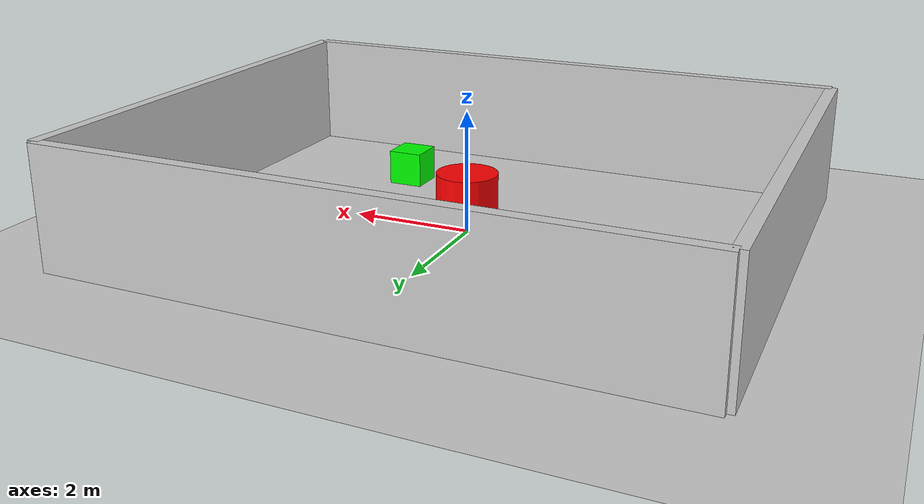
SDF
<?xml version="1.0"?>
<sdf version="1.6">
  <world name="qcar_lidar_test">

    <!-- Gazebo ROS plugins -->
    <plugin name="gazebo_ros_state" filename="libgazebo_ros_state.so">
      <ros>
        <namespace>/gazebo</namespace>
      </ros>
      <update_rate>1.0</update_rate>
    </plugin>

    <plugin name="gazebo_ros_factory" filename="libgazebo_ros_factory.so">
    </plugin>

    <!-- Physics settings -->
    <physics name="default_physics" default="true" type="ode">
      <max_step_size>0.001</max_step_size>
      <real_time_factor>1.0</real_time_factor>
      <real_time_update_rate>1000</real_time_update_rate>
    </physics>

    <!-- Lighting -->
    <include>
      <uri>model://sun</uri>
    </include>

    <!-- Ground plane -->
    <include>
      <uri>model://ground_plane</uri>
    </include>

    <!-- Rectangular room with walls (10m x 8m) -->

    <!-- North wall -->
    <model name="wall_north">
      <static>true</static>
      <pose>0 4 1 0 0 0</pose>
      <link name="link">
        <collision name="collision">
          <geometry>
            <box>
              <size>10 0.2 2</size>
            </box>
          </geometry>
        </collision>
        <visual name="visual">
          <geometry>
            <box>
              <size>10 0.2 2</size>
            </box>
          </geometry>
          <material>
            <ambient>0.8 0.8 0.8 1</ambient>
            <diffuse>0.8 0.8 0.8 1</diffuse>
          </material>
        </visual>
      </link>
    </model>

    <!-- South wall -->
    <model name="wall_south">
      <static>true</static>
      <pose>0 -4 1 0 0 0</pose>
      <link name="link">
        <collision name="collision">
          <geometry>
            <box>
              <size>10 0.2 2</size>
            </box>
          </geometry>
        </collision>
        <visual name="visual">
          <geometry>
            <box>
              <size>10 0.2 2</size>
            </box>
          </geometry>
          <material>
            <ambient>0.8 0.8 0.8 1</ambient>
            <diffuse>0.8 0.8 0.8 1</diffuse>
          </material>
        </visual>
      </link>
    </model>

    <!-- East wall -->
    <model name="wall_east">
      <static>true</static>
      <pose>5 0 1 0 0 0</pose>
      <link name="link">
        <collision name="collision">
          <geometry>
            <box>
              <size>0.2 8 2</size>
            </box>
          </geometry>
        </collision>
        <visual name="visual">
          <geometry>
            <box>
              <size>0.2 8 2</size>
            </box>
          </geometry>
          <material>
            <ambient>0.8 0.8 0.8 1</ambient>
            <diffuse>0.8 0.8 0.8 1</diffuse>
          </material>
        </visual>
      </link>
    </model>

    <!-- West wall -->
    <model name="wall_west">
      <static>true</static>
      <pose>-5 0 1 0 0 0</pose>
      <link name="link">
        <collision name="collision">
          <geometry>
            <box>
              <size>0.2 8 2</size>
            </box>
          </geometry>
        </collision>
        <visual name="visual">
          <geometry>
            <box>
              <size>0.2 8 2</size>
            </box>
          </geometry>
          <material>
            <ambient>0.8 0.8 0.8 1</ambient>
            <diffuse>0.8 0.8 0.8 1</diffuse>
          </material>
        </visual>
      </link>
    </model>

    <!-- Central obstacle (cylinder) -->
    <model name="obstacle_center">
      <static>true</static>
      <pose>0 0 0.5 0 0 0</pose>
      <link name="link">
        <collision name="collision">
          <geometry>
            <cylinder>
              <radius>0.5</radius>
              <length>1.0</length>
            </cylinder>
          </geometry>
        </collision>
        <visual name="visual">
          <geometry>
            <cylinder>
              <radius>0.5</radius>
              <length>1.0</length>
            </cylinder>
          </geometry>
          <material>
            <ambient>1 0 0 1</ambient>
            <diffuse>1 0 0 1</diffuse>
          </material>
        </visual>
      </link>
    </model>

    <!-- Left obstacle (box) -->
    <model name="obstacle_left">
      <static>true</static>
      <pose>-2 2 0.3 0 0 0</pose>
      <link name="link">
        <collision name="collision">
          <geometry>
            <box>
              <size>0.6 0.6 0.6</size>
            </box>
          </geometry>
        </collision>
        <visual name="visual">
          <geometry>
            <box>
              <size>0.6 0.6 0.6</size>
            </box>
          </geometry>
          <material>
            <ambient>0 0 1 1</ambient>
            <diffuse>0 0 1 1</diffuse>
          </material>
        </visual>
      </link>
    </model>

    <!-- Right obstacle (box) -->
    <model name="obstacle_right">
      <static>true</static>
      <pose>2 -2 0.3 0 0 0</pose>
      <link name="link">
        <collision name="collision">
          <geometry>
            <box>
              <size>0.6 0.6 0.6</size>
            </box>
          </geometry>
        </collision>
        <visual name="visual">
          <geometry>
            <box>
              <size>0.6 0.6 0.6</size>
            </box>
          </geometry>
          <material>
            <ambient>0 1 0 1</ambient>
            <diffuse>0 1 0 1</diffuse>
          </material>
        </visual>
      </link>
    </model>

  </world>
</sdf>
